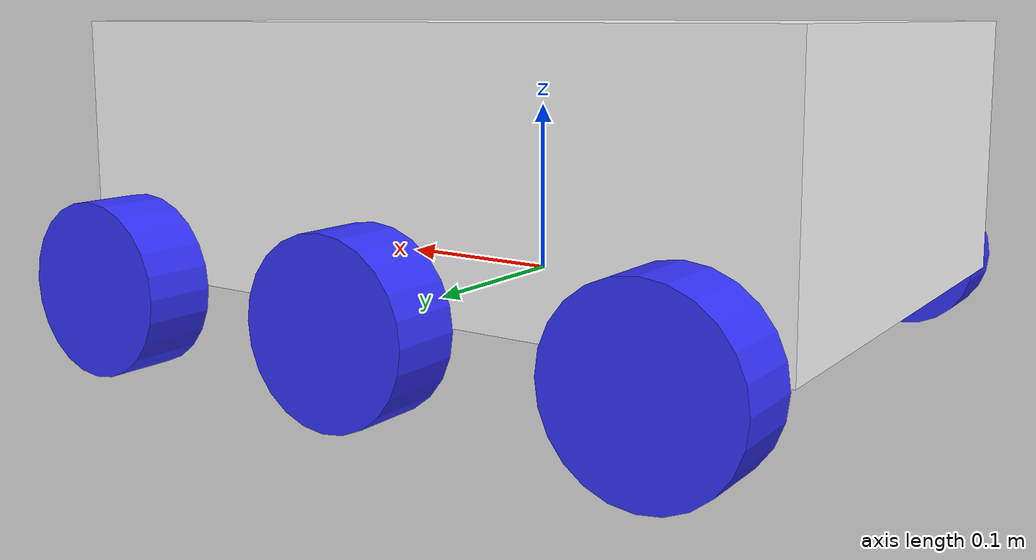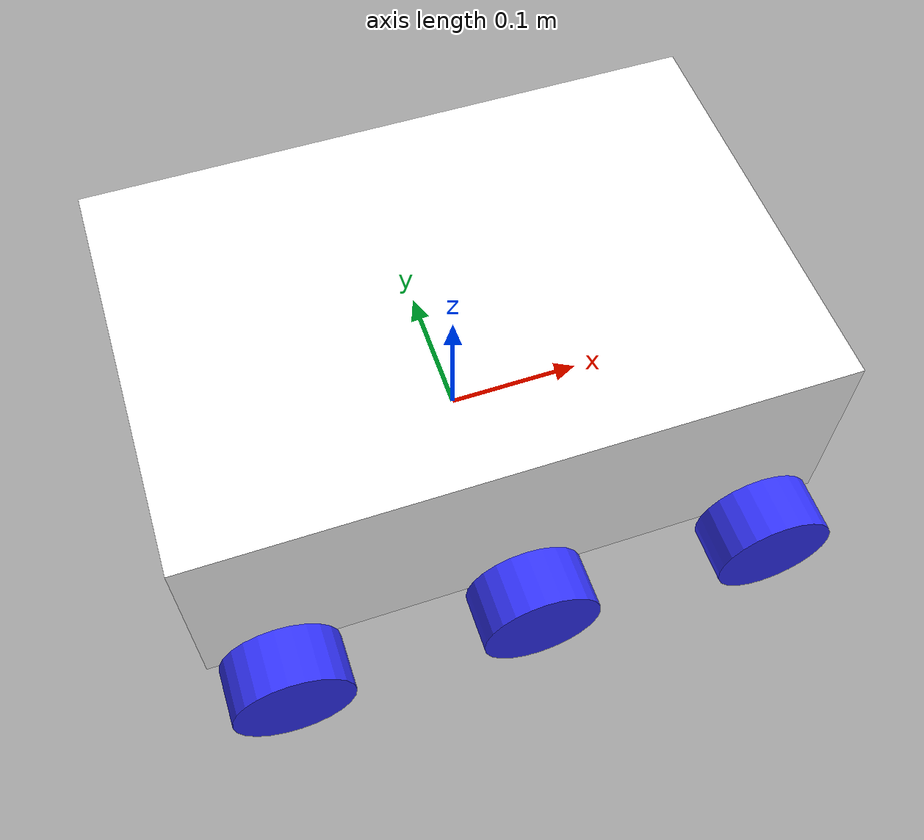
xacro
<?xml version="1.0" ?>
<robot xmlns:xacro="http://www.ros.org/wiki/xacro">
    <xacro:include filename="inertial_macros.xacro"/>
    <material name="white">
        <color rgba="1 1 1 1"/>
    </material>
    <material name="orange">
        <color rgba="1 0.3 0.1 1"/>
    </material>
    <material name="blue">
        <color rgba="0.2 0.2 1 1"/>
    </material>
    <material name="black">
        <color rgba="0 0 0 1"/>
    </material>
    <material name="red">
        <color rgba="1 0 0 1"/>
    </material>

    <link name="base_link">

     <!-- BASE_FOOTPRINT LINK -->

    <joint name="base_footprint_joint" type="fixed">
        <parent link="base_link"/>
        <child link="base_footprint"/>
        <origin xyz="0 0 0" rpy="0 0 0"/>
    </joint>

    <link name="base_footprint">
    </link>

    </link>
    <joint name="chassis_joint" type="fixed">
        <parent link="base_link"/>
        <child link="chassis"/>
        <origin xyz="-0.225 0 0"/>
    </joint>
    <link name="chassis">
        <visual>
            <origin xyz="0.225 0.0 0.075"/>
            <geometry>
                <box size="0.45 0.3 0.15"/>
            </geometry>
            <material name="white"/>

        </visual>
        <collision>
            <origin xyz="0.225 0.0 0.075"/>
            <geometry>
                <box size="0.45 0.3 0.15"/>
            </geometry>

        </collision>
        <xacro:inertial_box mass="0.5" x="0.45" y="0.3" z="0.15">
            <origin xyz="0.225 0.0 0.075" rpy="0 0 0"/>
        </xacro:inertial_box>
    </link>

    <gazebo reference="chassis">
        <material>Gazebo/White</material>
    </gazebo>

    <joint name="front_left_wheel_joint" type="continuous">
        <parent link="base_link"/>
        <child link="front_left_wheel"/>
        <origin xyz="0.175 0.175 0" rpy="-${pi/2} 0.0 0.0"/>
        <axis xyz="0 0 1"/>

    </joint>
    <link name="front_left_wheel">
        <visual>
            <geometry>
                <cylinder radius="0.05" length="0.04"/>
            </geometry>
            <material name="blue"/>
        </visual>
        <collision>
            <geometry>
                <cylinder radius="0.0425" length="0.04"/>
            </geometry>
        </collision>
        <xacro:inertial_cylinder mass="0.1" length="0.04" radius="0.0425">
            <origin xyz="0 0 0" rpy="0 0 0"/>
        </xacro:inertial_cylinder>
    </link>

    <joint name="back_left_wheel_joint" type="continuous">
        <parent link="base_link"/>
        <child link="back_left_wheel"/>
        <origin xyz="-0.175 0.175 0" rpy="-${pi/2} 0.0 0.0"/>
        <axis xyz="0 0 1"/>

    </joint>
    <link name="back_left_wheel">
        <visual>
            <geometry>
                <cylinder radius="0.05" length="0.04"/>
            </geometry>
            <material name="blue"/>
        </visual>
        <collision>
            <geometry>
                <cylinder radius="0.0425" length="0.04"/>
            </geometry>
        </collision>
        <xacro:inertial_cylinder mass="0.1" length="0.04" radius="0.0425">
            <origin xyz="0 0 0" rpy="0 0 0"/>
        </xacro:inertial_cylinder>
    </link>

    <joint name="left_wheel_joint" type="continuous">
        <parent link="base_link"/>
        <child link="left_wheel"/>
        <origin xyz="0 0.175 0" rpy="-${pi/2} 0.0 0.0"/>
        <axis xyz="0 0 1"/>

    </joint>
    <link name="left_wheel">
        <visual>
            <geometry>
                <cylinder radius="0.05" length="0.04"/>
            </geometry>
            <material name="blue"/>
        </visual>
        <collision>
            <geometry>
                <cylinder radius="0.0425" length="0.04"/>
            </geometry>
        </collision>
        <xacro:inertial_cylinder mass="0.1" length="0.04" radius="0.0425">
            <origin xyz="0 0 0" rpy="0 0 0"/>
        </xacro:inertial_cylinder>
    </link>

    <joint name="front_right_wheel_joint" type="continuous">
        <parent link="base_link"/>
        <child link="front_right_wheel"/>
        <origin xyz="0.175 -0.175 0" rpy="${pi/2} 0.0 0.0"/>
        <axis xyz="0 0 -1"/>

    </joint>
    <link name="front_right_wheel">
        <visual>
            <geometry>
                <cylinder radius="0.0425" length="0.04"/>
            </geometry>
            <material name="blue"/>
        </visual>
        <collision>
            <geometry>
                <cylinder radius="0.0425" length="0.04"/>
            </geometry>
        </collision>
        <xacro:inertial_cylinder mass="0.1" length="0.04" radius="0.0425">
            <origin xyz="0 0 0" rpy="0 0 0"/>
        </xacro:inertial_cylinder>
    </link>

    <joint name="right_wheel_joint" type="continuous">
        <parent link="base_link"/>
        <child link="right_wheel"/>
        <origin xyz="0 -0.175 0" rpy="${pi/2} 0.0 0.0"/>
        <axis xyz="0 0 -1"/>

    </joint>
    <link name="right_wheel">
        <visual>
            <geometry>
                <cylinder radius="0.0425" length="0.04"/>
            </geometry>
            <material name="blue"/>
        </visual>
        <collision>
            <geometry>
                <cylinder radius="0.0425" length="0.04"/>
            </geometry>
        </collision>
        <xacro:inertial_cylinder mass="0.1" length="0.04" radius="0.0425">
            <origin xyz="0 0 0" rpy="0 0 0"/>
        </xacro:inertial_cylinder>
    </link>

    <joint name="back_right_wheel_joint" type="continuous">
        <parent link="base_link"/>
        <child link="back_right_wheel"/>
        <origin xyz="-0.175 -0.175 0" rpy="${pi/2} 0.0 0.0"/>
        <axis xyz="0 0 -1"/>

    </joint>
    <link name="back_right_wheel">
        <visual>
            <geometry>
                <cylinder radius="0.0425" length="0.04"/>
            </geometry>
            <material name="blue"/>
        </visual>
        <collision>
            <geometry>
                <cylinder radius="0.0425" length="0.04"/>
            </geometry>
        </collision>
        <xacro:inertial_cylinder mass="0.1" length="0.04" radius="0.0425">
            <origin xyz="0 0 0" rpy="0 0 0"/>
        </xacro:inertial_cylinder>
    </link>

    <gazebo reference="front_left_wheel">
        <material>Gazebo/Blue</material>
    </gazebo>

    <gazebo reference="back_left_wheel">
        <material>Gazebo/Blue</material>
    </gazebo>

    <gazebo reference="left_wheel">
        <material>Gazebo/Blue</material>
    </gazebo>

    <gazebo reference="front_right_wheel">
        <material>Gazebo/Blue</material>
    </gazebo>

    <gazebo reference="right_wheel">
        <material>Gazebo/Blue</material>
    </gazebo>

    <gazebo reference="back_right_wheel">
        <material>Gazebo/Blue</material>
    </gazebo>

</robot>
